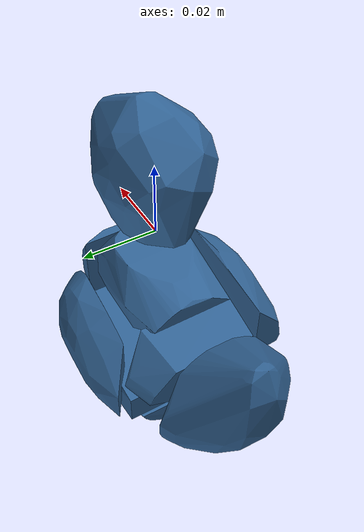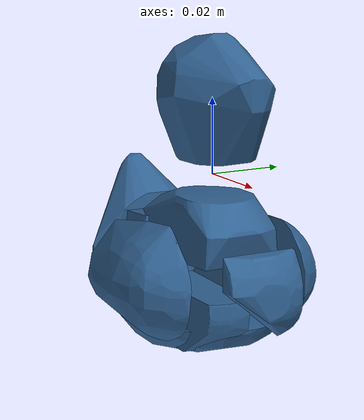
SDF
<?xml version='1.0' encoding='UTF-8'?>
<!-- This SDF was autogenerated by obj_to_drake_sdf.py -->
<sdf version="1.7">
  <model name="rubber_duck">
    <link name="rubber_duck">
      <inertial>
        <pose>0 0 0 0 0 0</pose>
        <mass>0.05</mass>
        <inertia>
          <ixx>3.5338529e-05</ixx>
          <iyy>4.5772114e-05</iyy>
          <izz>2.8437261e-05</izz>
          <ixy>-2.3352593e-11</ixy>
          <ixz>-4.0583709e-06</ixz>
          <iyz>1.4436325e-10</iyz>
        </inertia>
      </inertial>
      <visual name="convex_0">
        <pose>0 0 0 0 0 0</pose>
        <geometry>
          <mesh>
            <uri>rubber_duck_convex_0.obj</uri>
          </mesh>
        </geometry>
        <material>
          <diffuse>0.19607843137254902 0.39215686274509803 0.5882352941176471 1</diffuse>
        </material>
      </visual>
      <collision name="convex_0_volume">
        <pose>0 0 0 0 0 0</pose>
        <geometry>
          <mesh>
            <uri>rubber_duck_convex_0.obj</uri>
          </mesh>
        </geometry>
        <drake:proximity_properties xmlns:drake="uri:drake">
          <drake:compliant_hydroelastic/>
          <drake:hydroelastic_modulus> 3.0e7 </drake:hydroelastic_modulus>
          <drake:mesh_resolution_hint> 0.02 </drake:mesh_resolution_hint>
          <drake:hunt_crossley_dissipation>10</drake:hunt_crossley_dissipation>
          <drake:mu_dynamic>0.3</drake:mu_dynamic>
        </drake:proximity_properties>
      </collision>
      <visual name="convex_1">
        <pose>0 0 0 0 0 0</pose>
        <geometry>
          <mesh>
            <uri>rubber_duck_convex_1.obj</uri>
          </mesh>
        </geometry>
        <material>
          <diffuse>0.19607843137254902 0.39215686274509803 0.5882352941176471 1</diffuse>
        </material>
      </visual>
      <collision name="convex_1_volume">
        <pose>0 0 0 0 0 0</pose>
        <geometry>
          <mesh>
            <uri>rubber_duck_convex_1.obj</uri>
          </mesh>
        </geometry>
        <drake:proximity_properties xmlns:drake="uri:drake">
          <drake:compliant_hydroelastic/>
          <drake:hydroelastic_modulus> 3.0e7 </drake:hydroelastic_modulus>
          <drake:mesh_resolution_hint> 0.02 </drake:mesh_resolution_hint>
          <drake:hunt_crossley_dissipation>10</drake:hunt_crossley_dissipation>
          <drake:mu_dynamic>0.3</drake:mu_dynamic>
        </drake:proximity_properties>
      </collision>
      <visual name="convex_2">
        <pose>0 0 0 0 0 0</pose>
        <geometry>
          <mesh>
            <uri>rubber_duck_convex_2.obj</uri>
          </mesh>
        </geometry>
        <material>
          <diffuse>0.19607843137254902 0.39215686274509803 0.5882352941176471 1</diffuse>
        </material>
      </visual>
      <collision name="convex_2_volume">
        <pose>0 0 0 0 0 0</pose>
        <geometry>
          <mesh>
            <uri>rubber_duck_convex_2.obj</uri>
          </mesh>
        </geometry>
        <drake:proximity_properties xmlns:drake="uri:drake">
          <drake:compliant_hydroelastic/>
          <drake:hydroelastic_modulus> 3.0e7 </drake:hydroelastic_modulus>
          <drake:mesh_resolution_hint> 0.02 </drake:mesh_resolution_hint>
          <drake:hunt_crossley_dissipation>10</drake:hunt_crossley_dissipation>
          <drake:mu_dynamic>0.3</drake:mu_dynamic>
        </drake:proximity_properties>
      </collision>
      <visual name="convex_3">
        <pose>0 0 0 0 0 0</pose>
        <geometry>
          <mesh>
            <uri>rubber_duck_convex_3.obj</uri>
          </mesh>
        </geometry>
        <material>
          <diffuse>0.19607843137254902 0.39215686274509803 0.5882352941176471 1</diffuse>
        </material>
      </visual>
      <collision name="convex_3_volume">
        <pose>0 0 0 0 0 0</pose>
        <geometry>
          <mesh>
            <uri>rubber_duck_convex_3.obj</uri>
          </mesh>
        </geometry>
        <drake:proximity_properties xmlns:drake="uri:drake">
          <drake:compliant_hydroelastic/>
          <drake:hydroelastic_modulus> 3.0e7 </drake:hydroelastic_modulus>
          <drake:mesh_resolution_hint> 0.02 </drake:mesh_resolution_hint>
          <drake:hunt_crossley_dissipation>10</drake:hunt_crossley_dissipation>
          <drake:mu_dynamic>0.3</drake:mu_dynamic>
        </drake:proximity_properties>
      </collision>
      <visual name="convex_4">
        <pose>0 0 0 0 0 0</pose>
        <geometry>
          <mesh>
            <uri>rubber_duck_convex_4.obj</uri>
          </mesh>
        </geometry>
        <material>
          <diffuse>0.19607843137254902 0.39215686274509803 0.5882352941176471 1</diffuse>
        </material>
      </visual>
      <collision name="convex_4_volume">
        <pose>0 0 0 0 0 0</pose>
        <geometry>
          <mesh>
            <uri>rubber_duck_convex_4.obj</uri>
          </mesh>
        </geometry>
        <drake:proximity_properties xmlns:drake="uri:drake">
          <drake:compliant_hydroelastic/>
          <drake:hydroelastic_modulus> 3.0e7 </drake:hydroelastic_modulus>
          <drake:mesh_resolution_hint> 0.02 </drake:mesh_resolution_hint>
          <drake:hunt_crossley_dissipation>10</drake:hunt_crossley_dissipation>
          <drake:mu_dynamic>0.3</drake:mu_dynamic>
        </drake:proximity_properties>
      </collision>
      <visual name="convex_5">
        <pose>0 0 0 0 0 0</pose>
        <geometry>
          <mesh>
            <uri>rubber_duck_convex_5.obj</uri>
          </mesh>
        </geometry>
        <material>
          <diffuse>0.19607843137254902 0.39215686274509803 0.5882352941176471 1</diffuse>
        </material>
      </visual>
      <collision name="convex_5_volume">
        <pose>0 0 0 0 0 0</pose>
        <geometry>
          <mesh>
            <uri>rubber_duck_convex_5.obj</uri>
          </mesh>
        </geometry>
        <drake:proximity_properties xmlns:drake="uri:drake">
          <drake:compliant_hydroelastic/>
          <drake:hydroelastic_modulus> 3.0e7 </drake:hydroelastic_modulus>
          <drake:mesh_resolution_hint> 0.02 </drake:mesh_resolution_hint>
          <drake:hunt_crossley_dissipation>10</drake:hunt_crossley_dissipation>
          <drake:mu_dynamic>0.3</drake:mu_dynamic>
        </drake:proximity_properties>
      </collision>
      <visual name="convex_6">
        <pose>0 0 0 0 0 0</pose>
        <geometry>
          <mesh>
            <uri>rubber_duck_convex_6.obj</uri>
          </mesh>
        </geometry>
        <material>
          <diffuse>0.19607843137254902 0.39215686274509803 0.5882352941176471 1</diffuse>
        </material>
      </visual>
      <collision name="convex_6_volume">
        <pose>0 0 0 0 0 0</pose>
        <geometry>
          <mesh>
            <uri>rubber_duck_convex_6.obj</uri>
          </mesh>
        </geometry>
        <drake:proximity_properties xmlns:drake="uri:drake">
          <drake:compliant_hydroelastic/>
          <drake:hydroelastic_modulus> 3.0e7 </drake:hydroelastic_modulus>
          <drake:mesh_resolution_hint> 0.02 </drake:mesh_resolution_hint>
          <drake:hunt_crossley_dissipation>10</drake:hunt_crossley_dissipation>
          <drake:mu_dynamic>0.3</drake:mu_dynamic>
        </drake:proximity_properties>
      </collision>
      <visual name="convex_7">
        <pose>0 0 0 0 0 0</pose>
        <geometry>
          <mesh>
            <uri>rubber_duck_convex_7.obj</uri>
          </mesh>
        </geometry>
        <material>
          <diffuse>0.19607843137254902 0.39215686274509803 0.5882352941176471 1</diffuse>
        </material>
      </visual>
      <collision name="convex_7_volume">
        <pose>0 0 0 0 0 0</pose>
        <geometry>
          <mesh>
            <uri>rubber_duck_convex_7.obj</uri>
          </mesh>
        </geometry>
        <drake:proximity_properties xmlns:drake="uri:drake">
          <drake:compliant_hydroelastic/>
          <drake:hydroelastic_modulus> 3.0e7 </drake:hydroelastic_modulus>
          <drake:mesh_resolution_hint> 0.02 </drake:mesh_resolution_hint>
          <drake:hunt_crossley_dissipation>10</drake:hunt_crossley_dissipation>
          <drake:mu_dynamic>0.3</drake:mu_dynamic>
        </drake:proximity_properties>
      </collision>
      <visual name="convex_8">
        <pose>0 0 0 0 0 0</pose>
        <geometry>
          <mesh>
            <uri>rubber_duck_convex_8.obj</uri>
          </mesh>
        </geometry>
        <material>
          <diffuse>0.19607843137254902 0.39215686274509803 0.5882352941176471 1</diffuse>
        </material>
      </visual>
      <collision name="convex_8_volume">
        <pose>0 0 0 0 0 0</pose>
        <geometry>
          <mesh>
            <uri>rubber_duck_convex_8.obj</uri>
          </mesh>
        </geometry>
        <drake:proximity_properties xmlns:drake="uri:drake">
          <drake:compliant_hydroelastic/>
          <drake:hydroelastic_modulus> 3.0e7 </drake:hydroelastic_modulus>
          <drake:mesh_resolution_hint> 0.02 </drake:mesh_resolution_hint>
          <drake:hunt_crossley_dissipation>10</drake:hunt_crossley_dissipation>
          <drake:mu_dynamic>0.3</drake:mu_dynamic>
        </drake:proximity_properties>
      </collision>
      <visual name="convex_9">
        <pose>0 0 0 0 0 0</pose>
        <geometry>
          <mesh>
            <uri>rubber_duck_convex_9.obj</uri>
          </mesh>
        </geometry>
        <material>
          <diffuse>0.19607843137254902 0.39215686274509803 0.5882352941176471 1</diffuse>
        </material>
      </visual>
      <collision name="convex_9_volume">
        <pose>0 0 0 0 0 0</pose>
        <geometry>
          <mesh>
            <uri>rubber_duck_convex_9.obj</uri>
          </mesh>
        </geometry>
        <drake:proximity_properties xmlns:drake="uri:drake">
          <drake:compliant_hydroelastic/>
          <drake:hydroelastic_modulus> 3.0e7 </drake:hydroelastic_modulus>
          <drake:mesh_resolution_hint> 0.02 </drake:mesh_resolution_hint>
          <drake:hunt_crossley_dissipation>10</drake:hunt_crossley_dissipation>
          <drake:mu_dynamic>0.3</drake:mu_dynamic>
        </drake:proximity_properties>
      </collision>
    </link>
  </model>
</sdf>
